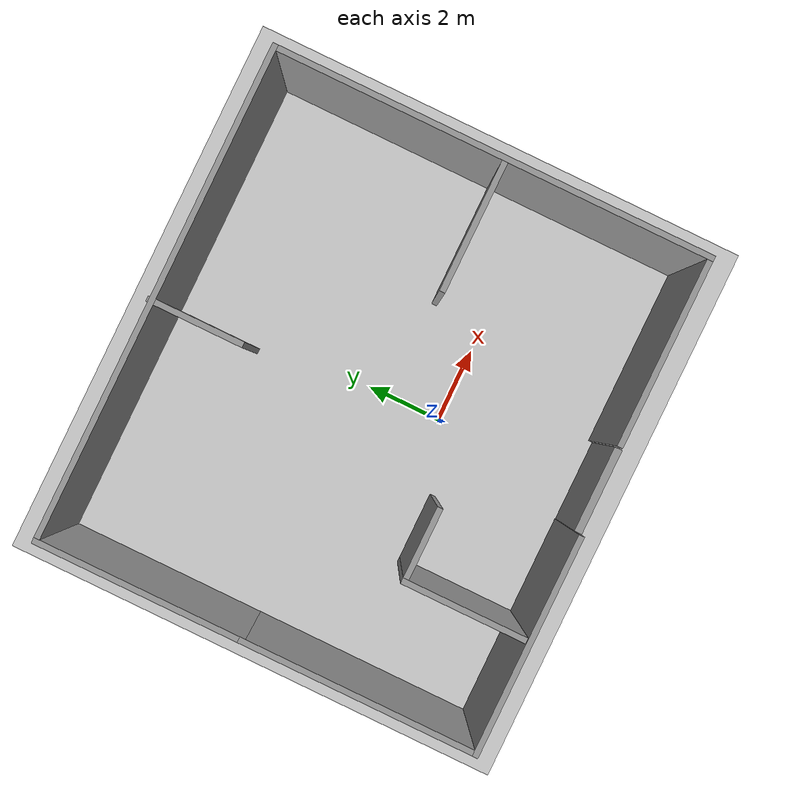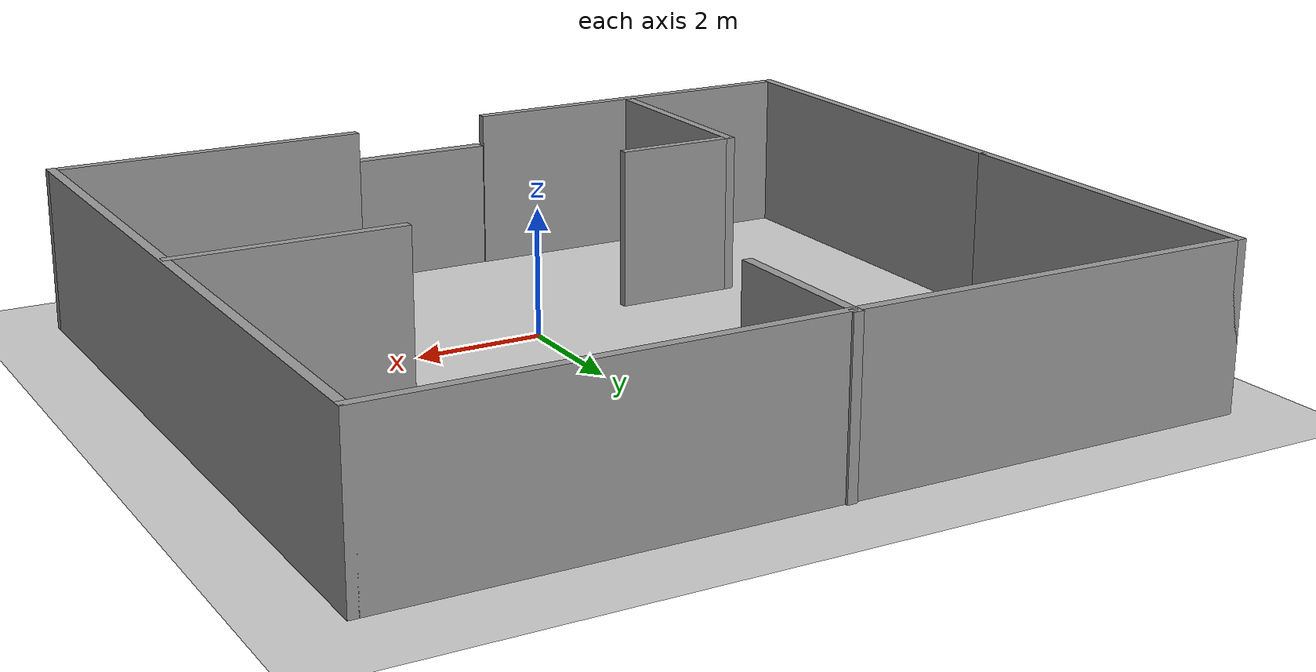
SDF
<sdf version="1.7">
 <world name="default">
  <light name="sun" type="directional">
   <pose>0 0 10 0 -0 0</pose>
   <diffuse>0.8 0.8 0.8 1</diffuse>
   <specular>0.2 0.2 0.2 1</specular>
   <attenuation>
    <range>1000</range>
    <constant>0.9</constant>
    <linear>0.01</linear>
    <quadratic>0.001</quadratic>
   </attenuation>
   <direction>-0.5 0.1 -0.9</direction>
   <spot><inner_angle>0</inner_angle><outer_angle>0</outer_angle><falloff>0</falloff></spot>
  </light>
  <model name="ground_plane">
   <static>1</static>
   <link name="link">
    <collision name="collision">
     <geometry><plane><normal>0 0 1</normal><size>100 100</size></plane></geometry>
     <surface>
      <contact><collide_bitmask>65535</collide_bitmask></contact>
      <friction><ode><mu>100</mu><mu2>50</mu2></ode></friction>
     </surface>
    </collision>
    <visual name="visual">
     <cast_shadows>0</cast_shadows>
     <geometry><plane><normal>0 0 1</normal><size>100 100</size></plane></geometry>
     <material>
      <script><uri>file://media/materials/scripts/gazebo.material</uri><name>Gazebo/Grey</name></script>
     </material>
    </visual>
   </link>
  </model>
  <gravity>0 0 -9.8</gravity>
  <magnetic_field>6e-06 2.3e-05 -4.2e-05</magnetic_field>
  <atmosphere type="adiabatic"/>
  <physics type="ode">
   <max_step_size>0.001</max_step_size>
   <real_time_factor>1</real_time_factor>
   <real_time_update_rate>1000</real_time_update_rate>
  </physics>
  <scene><ambient>0.4 0.4 0.4 1</ambient><background>0.7 0.7 0.7 1</background><shadows>1</shadows></scene>
  <spherical_coordinates>
   <surface_model>EARTH_WGS84</surface_model>
   <latitude_deg>33.83</latitude_deg>
   <longitude_deg>-84.42</longitude_deg>
   <elevation>254.99568</elevation>
   <heading_deg>180</heading_deg>
  </spherical_coordinates>
  <model name="test1">
   <pose>-0.25968 1.75184 0 0 -0 0</pose>
   <link name="Door_0">
    <collision name="Door_0_Collision">
     <geometry><box><size>2.24158 0.2 2</size></box></geometry>
     <pose>0 0 1 0 -0 0</pose>
    </collision>
    <visual name="Door_0_Visual">
     <pose>0 0 1 0 -0 0</pose>
     <geometry><box><size>2.24158 0.2 2</size></box></geometry>
     <material>
      <script><uri>file://media/materials/scripts/gazebo.material</uri><name>Gazebo/Grey</name></script>
     </material>
    </visual>
    <pose>0.37795 -5.78315 0 0 -0 0</pose>
   </link>
   <link name="Wall_0">
    <collision name="Wall_0_Collision">
     <geometry><box><size>5.75 0.15 2.5</size></box></geometry>
     <pose>0 0 1.25 0 -0 0</pose>
    </collision>
    <visual name="Wall_0_Visual">
     <pose>0 0 1.25 0 -0 0</pose>
     <geometry><box><size>5.75 0.15 2.5</size></box></geometry>
     <material>
      <script><uri>file://media/materials/scripts/gazebo.material</uri><name>Gazebo/Grey</name></script>
      <ambient>1 1 1 1</ambient>
     </material>
     <meta><layer>0</layer></meta>
    </visual>
    <pose>-3.625 -5.74636 0 0 -0 3.14159</pose>
   </link>
   <link name="Wall_1">
    <collision name="Wall_1_Collision">
     <geometry><box><size>6.25 0.15 2.5</size></box></geometry>
     <pose>0 0 1.25 0 -0 0</pose>
    </collision>
    <visual name="Wall_1_Visual">
     <pose>0 0 1.25 0 -0 0</pose>
     <geometry><box><size>6.25 0.15 2.5</size></box></geometry>
     <material>
      <script><uri>file://media/materials/scripts/gazebo.material</uri><name>Gazebo/Grey</name></script>
      <ambient>1 1 1 1</ambient>
     </material>
     <meta><layer>0</layer></meta>
    </visual>
    <pose>-6.425 -2.69636 0 0 -0 1.5708</pose>
   </link>
   <link name="Wall_11">
    <collision name="Wall_11_Collision">
     <geometry><box><size>3.25 0.15 2.5</size></box></geometry>
     <pose>0 0 1.25 0 -0 0</pose>
    </collision>
    <visual name="Wall_11_Visual">
     <pose>0 0 1.25 0 -0 0</pose>
     <geometry><box><size>3.25 0.15 2.5</size></box></geometry>
     <material>
      <script><uri>file://media/materials/scripts/gazebo.material</uri><name>Gazebo/Grey</name></script>
      <ambient>1 1 1 1</ambient>
     </material>
     <meta><layer>0</layer></meta>
    </visual>
    <pose>-3.5227 -4.03275 0 0 -0 1.5708</pose>
   </link>
   <link name="Wall_12">
    <collision name="Wall_12_Collision">
     <geometry><box><size>2 0.15 2.5</size></box></geometry>
     <pose>0 0 1.25 0 -0 0</pose>
    </collision>
    <visual name="Wall_12_Visual">
     <pose>0 0 1.25 0 -0 0</pose>
     <geometry><box><size>2 0.15 2.5</size></box></geometry>
     <material>
      <script><uri>file://media/materials/scripts/gazebo.material</uri><name>Gazebo/Grey</name></script>
      <ambient>1 1 1 1</ambient>
     </material>
     <meta><layer>0</layer></meta>
    </visual>
    <pose>-2.5977 -2.48276 0 0 -0 0</pose>
   </link>
   <link name="Wall_2">
    <collision name="Wall_2_Collision">
     <geometry><box><size>5.5 0.15 2.5</size></box></geometry>
     <pose>0 0 1.25 0 -0 0</pose>
    </collision>
    <visual name="Wall_2_Visual">
     <pose>0 0 1.25 0 -0 0</pose>
     <geometry><box><size>5.5 0.15 2.5</size></box></geometry>
     <material>
      <script><uri>file://media/materials/scripts/gazebo.material</uri><name>Gazebo/Grey</name></script>
      <ambient>1 1 1 1</ambient>
     </material>
     <meta><layer>0</layer></meta>
    </visual>
    <pose>-6.425 3.02864 0 0 -0 1.5708</pose>
   </link>
   <link name="Wall_3">
    <collision name="Wall_3_Collision">
     <geometry><box><size>13 0.15 2.5</size></box></geometry>
     <pose>0 0 1.25 0 -0 0</pose>
    </collision>
    <visual name="Wall_3_Visual">
     <pose>0 0 1.25 0 -0 0</pose>
     <geometry><box><size>13 0.15 2.5</size></box></geometry>
     <material>
      <script><uri>file://media/materials/scripts/gazebo.material</uri><name>Gazebo/Grey</name></script>
      <ambient>1 1 1 1</ambient>
     </material>
     <meta><layer>0</layer></meta>
    </visual>
    <pose>-0 5.70364 0 0 -0 0</pose>
   </link>
   <link name="Wall_4">
    <collision name="Wall_4_Collision">
     <geometry><box><size>11.5 0.15 2.5</size></box></geometry>
     <pose>0 0 1.25 0 -0 0</pose>
    </collision>
    <visual name="Wall_4_Visual">
     <pose>0 0 1.25 0 -0 0</pose>
     <geometry><box><size>11.5 0.15 2.5</size></box></geometry>
     <material>
      <script><uri>file://media/materials/scripts/gazebo.material</uri><name>Gazebo/Grey</name></script>
      <ambient>1 1 1 1</ambient>
     </material>
     <meta><layer>0</layer></meta>
    </visual>
    <pose>6.425 0.02864 0 0 -0 -1.5708</pose>
   </link>
   <link name="Wall_5">
    <collision name="Wall_5_Collision">
     <geometry><box><size>5 0.15 2.5</size></box></geometry>
     <pose>0 0 1.25 0 -0 0</pose>
    </collision>
    <visual name="Wall_5_Visual">
     <pose>0 0 1.25 0 -0 0</pose>
     <geometry><box><size>5 0.15 2.5</size></box></geometry>
     <material>
      <script><uri>file://media/materials/scripts/gazebo.material</uri><name>Gazebo/Grey</name></script>
      <ambient>1 1 1 1</ambient>
     </material>
     <meta><layer>0</layer></meta>
    </visual>
    <pose>4 -5.64636 0 0 -0 3.14159</pose>
   </link>
   <link name="Wall_7">
    <collision name="Wall_7_Collision">
     <geometry><box><size>2.5 0.15 2.5</size></box></geometry>
     <pose>0 0 1.25 0 -0 0</pose>
    </collision>
    <visual name="Wall_7_Visual">
     <pose>0 0 1.25 0 -0 0</pose>
     <geometry><box><size>2.5 0.15 2.5</size></box></geometry>
     <material>
      <script><uri>file://media/materials/scripts/gazebo.material</uri><name>Gazebo/Grey</name></script>
      <ambient>1 1 1 1</ambient>
     </material>
     <meta><layer>0</layer></meta>
    </visual>
    <pose>-0.172974 4.57136 0 0 -0 1.5708</pose>
   </link>
   <link name="Wall_9">
    <collision name="Wall_9_Collision">
     <geometry><box><size>3.5 0.15 2.5</size></box></geometry>
     <pose>0 0 1.25 0 -0 0</pose>
    </collision>
    <visual name="Wall_9_Visual">
     <pose>0 0 1.25 0 -0 0</pose>
     <geometry><box><size>3.5 0.15 2.5</size></box></geometry>
     <material>
      <script><uri>file://media/materials/scripts/gazebo.material</uri><name>Gazebo/Grey</name></script>
      <ambient>1 1 1 1</ambient>
     </material>
     <meta><layer>0</layer></meta>
    </visual>
    <pose>4.71218 -0.325553 0 0 -0 0</pose>
   </link>
   <static>1</static>
  </model>
 </world>
</sdf>
